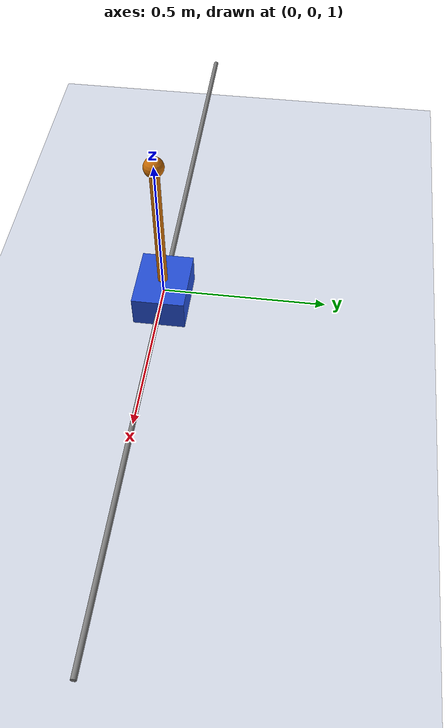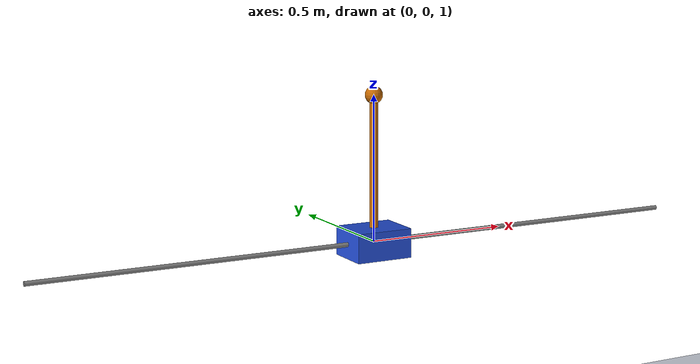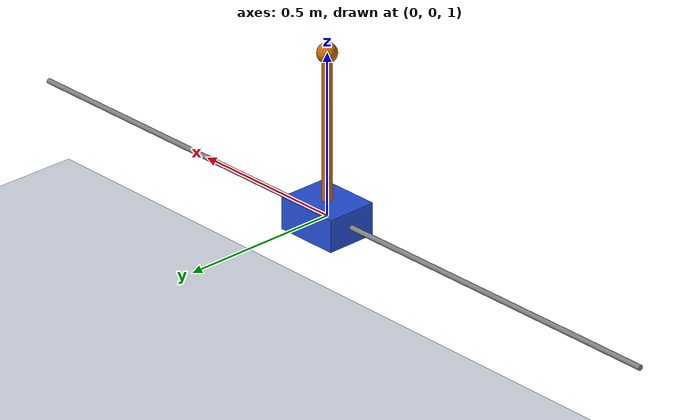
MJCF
<mujoco model="cartpole">
  <option timestep="0.002" gravity="0 0 -9.81"/>

  <default>
    <joint damping="0.02"/>
  </default>

  <worldbody>
    <geom type="plane" size="3 1 0.1" rgba="0.85 0.87 0.92 1"/>
    <body name="rail" pos="0 0 1">
      <geom type="cylinder" fromto="-1.2 0 0  1.2 0 0" size="0.008" rgba="0.5 0.5 0.5 1" contype="0" conaffinity="0"/>
      <body name="cart" pos="0 0 0">
        <joint name="slider" type="slide" axis="1 0 0" limited="true" range="-1.1 1.1"/>
        <geom type="box" size="0.1 0.08 0.05" rgba="0.14 0.31 0.85 1" mass="1.0"/>
        <body name="pole" pos="0 0 0">
          <joint name="hinge" type="hinge" axis="0 1 0" pos="0 0 0"/>
          <geom type="capsule" fromto="0 0 0  0 0 0.5" size="0.015" rgba="0.78 0.42 0.02 1" mass="0.1"/>
          <geom type="sphere" pos="0 0 0.5" size="0.03" rgba="0.78 0.42 0.02 1" mass="0.05"/>
        </body>
      </body>
    </body>
  </worldbody>

  <actuator>
    <motor joint="slider" name="cart_motor" ctrlrange="-25 25"/>
  </actuator>
</mujoco>
